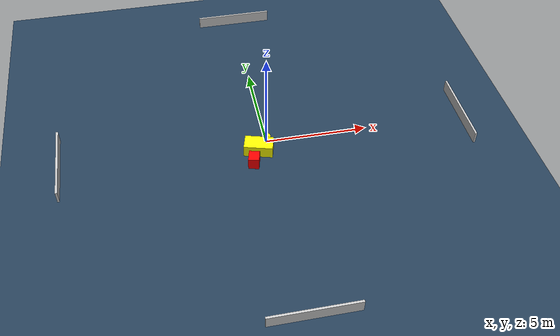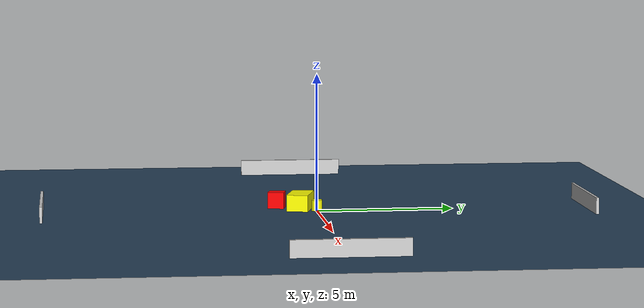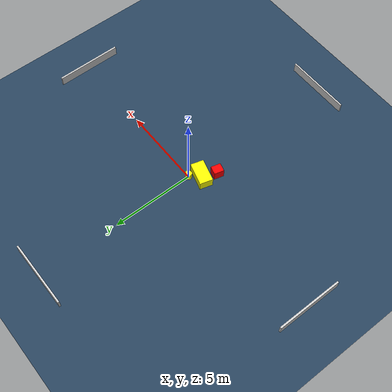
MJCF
<?xml version="1.0" ?>
<mujoco model="generated_environment">
  <option timestep="0.01" integrator="RK4" cone="elliptic"/>
  <default>
    <geom density="1"/>
  </default>
  <asset>
    <texture builtin="gradient" height="3072" name="skybox" rgb1="0.3 0.5 0.7" rgb2="0 0 0" type="skybox" width="512"/>
    <texture builtin="checker" height="300" name="groundplane" rgb1="0.2 0.3 0.4" rgb2="0.1 0.2 0.3" type="2d" width="300"/>
    <material name="groundplane" reflectance="0.2" texrepeat="5 5" texture="groundplane"/>
  </asset>
  <worldbody>
    <light dir="0 0 -1" directional="true" pos="0 0 1.5"/>
    <geom condim="3" friction="0.5 0.005 0.001" material="groundplane" name="floor" pos="0 0 0" size="0 0 0.05" type="plane"/>
    <body name="walls">
      <geom name="wall_1" condim="4" pos="-10.0 0.0 0.3" rgba="0.800000011920929 0.800000011920929 0.800000011920929 1.0" size="0.05 2.0 0.3" type="box"/>
      <geom name="wall_2" condim="4" pos="10.0 0.0 0.3" rgba="0.800000011920929 0.800000011920929 0.800000011920929 1.0" size="0.05 2.0 0.3" type="box"/>
      <geom name="wall_3" condim="4" pos="0.0 -10.0 0.3" rgba="0.800000011920929 0.800000011920929 0.800000011920929 1.0" size="2.0 0.05 0.3" type="box"/>
      <geom name="wall_4" condim="4" pos="0.0 10.0 0.3" rgba="0.800000011920929 0.800000011920929 0.800000011920929 1.0" size="2.0 0.05 0.3" type="box"/>
    </body>
    <body name="robot">
      <joint name="joint_x" type="slide" pos="0 0 0" axis="1 0 0"/>
      <joint name="joint_y" type="slide" pos="0 0 0" axis="0 1 0"/>
      <geom name="robot" type="cylinder" pos="0.0 0.0 0.2" size="0.2 0.2 0.0" mass="5.0" friction="1.0 0.005 0.0001" condim="4" rgba="1.0 1.0 0.0 1.0"/>
    </body>
    <body name="obstacle_1_movable">
      <geom name="obstacle_1_movable" condim="4" pos="-0.4816617101440753 -0.5605192882864886 0.3" euler="0 0 74.31948714678018" friction="0.0 0.005 0.001" rgba="1.0 1.0 0.0 1.0" size="0.39466770500777115 0.6951354743823402 0.3" type="box" mass="0.1"/>
      <joint type="free"/>
    </body>
    <body name="obstacle_2_static">
      <geom name="obstacle_2_static" condim="4" pos="-0.8650346726037715 -1.3943793786306735 0.3" euler="0 0 345.8682300455335" friction="0.0 0.005 0.001" rgba="1.0 0.0 0.0 1.0" size="0.2569531767961178 0.2975021368062458 0.3" type="box"/>
    </body>
  </worldbody>
  <actuator>
    <motor name="actuator_x" joint="joint_x" gear="1" ctrlrange="-1 1"/>
    <motor name="actuator_y" joint="joint_y" gear="1" ctrlrange="-1 1"/>
  </actuator>
</mujoco>
